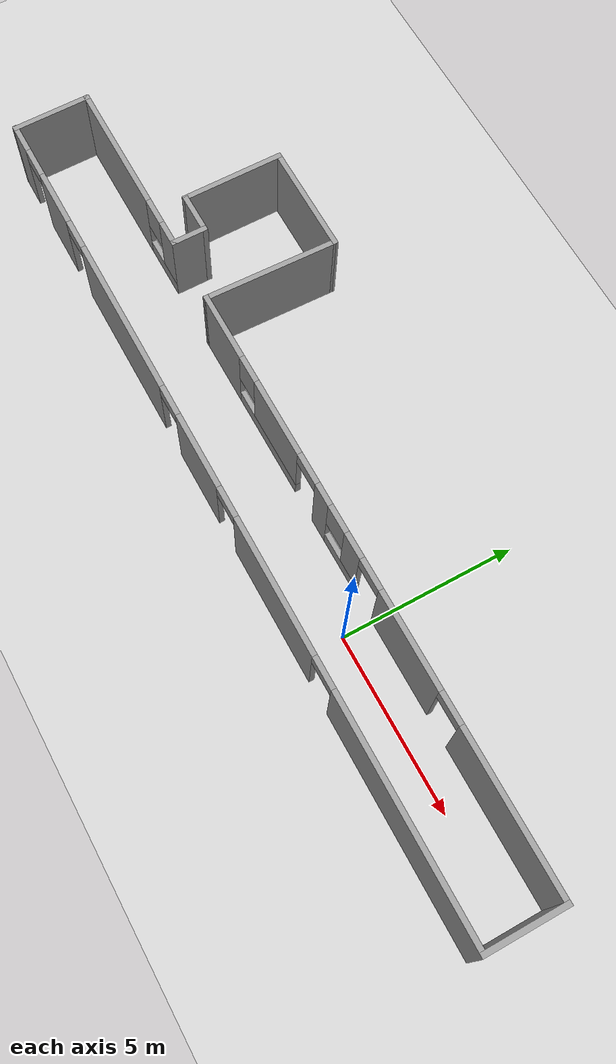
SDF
<sdf version="1.7">
 <world name="default">
  <light name="sun" type="directional">
   <pose>0 0 10 0 -0 0</pose>
   <diffuse>0.8 0.8 0.8 1</diffuse>
   <specular>0.2 0.2 0.2 1</specular>
   <attenuation>
    <range>1000</range>
    <constant>0.9</constant>
    <linear>0.01</linear>
    <quadratic>0.001</quadratic>
   </attenuation>
   <direction>-0.5 0.1 -0.9</direction>
   <spot><inner_angle>0</inner_angle><outer_angle>0</outer_angle><falloff>0</falloff></spot>
  </light>
  <model name="ground_plane">
   <static>1</static>
   <link name="link">
    <collision name="collision">
     <geometry><plane><normal>0 0 1</normal><size>100 100</size></plane></geometry>
     <surface>
      <contact><collide_bitmask>65535</collide_bitmask></contact>
      <friction><ode><mu>100</mu><mu2>50</mu2></ode></friction>
     </surface>
    </collision>
    <visual name="visual">
     <cast_shadows>0</cast_shadows>
     <geometry><plane><normal>0 0 1</normal><size>100 100</size></plane></geometry>
     <material>
      <script><uri>file://media/materials/scripts/gazebo.material</uri><name>Gazebo/Grey</name></script>
     </material>
    </visual>
   </link>
  </model>
  <gravity>0 0 -9.8</gravity>
  <magnetic_field>6e-06 2.3e-05 -4.2e-05</magnetic_field>
  <atmosphere type="adiabatic"/>
  <physics type="ode">
   <max_step_size>0.001</max_step_size>
   <real_time_factor>1</real_time_factor>
   <real_time_update_rate>1000</real_time_update_rate>
  </physics>
  <scene><ambient>0.4 0.4 0.4 1</ambient><background>0.7 0.7 0.7 1</background><shadows>1</shadows></scene>
  <audio><device>default</device></audio>
  <spherical_coordinates>
   <surface_model>EARTH_WGS84</surface_model>
   <latitude_deg>0</latitude_deg>
   <longitude_deg>0</longitude_deg>
   <elevation>0</elevation>
   <heading_deg>0</heading_deg>
  </spherical_coordinates>
  <model name="fx_floor10">
   <pose>-4.14967 1.73695 0 0 -0 0</pose>
   <link name="Wall_0">
    <pose>3.62523 -0.800869 0 0 -0 0</pose>
    <visual name="Wall_0_Visual_0">
     <pose>-7.61298 0 1.25 0 -0 0</pose>
     <geometry><box><size>2.02405 0.15 2.5</size></box></geometry>
     <material>
      <script><uri>file://media/materials/scripts/gazebo.material</uri><name>Gazebo/Grey</name></script>
      <ambient>1 1 1 1</ambient>
     </material>
     <meta><layer>0</layer></meta>
    </visual>
    <collision name="Wall_0_Collision_0">
     <geometry><box><size>2.02405 0.15 2.5</size></box></geometry>
     <pose>-7.61298 0 1.25 0 -0 0</pose>
    </collision>
    <visual name="Wall_0_Visual_1">
     <pose>-2.31095 0 1.25 0 -0 0</pose>
     <geometry><box><size>0.6545 0.15 2.5</size></box></geometry>
     <material>
      <script><uri>file://media/materials/scripts/gazebo.material</uri><name>Gazebo/Grey</name></script>
      <ambient>1 1 1 1</ambient>
     </material>
     <meta><layer>0</layer></meta>
    </visual>
    <collision name="Wall_0_Collision_1">
     <geometry><box><size>0.6545 0.15 2.5</size></box></geometry>
     <pose>-2.31095 0 1.25 0 -0 0</pose>
    </collision>
    <visual name="Wall_0_Visual_2">
     <pose>1.84034 0 1.25 0 -0 0</pose>
     <geometry><box><size>2.76614 0.15 2.5</size></box></geometry>
     <material>
      <script><uri>file://media/materials/scripts/gazebo.material</uri><name>Gazebo/Grey</name></script>
      <ambient>1 1 1 1</ambient>
     </material>
     <meta><layer>0</layer></meta>
    </visual>
    <collision name="Wall_0_Collision_2">
     <geometry><box><size>2.76614 0.15 2.5</size></box></geometry>
     <pose>1.84034 0 1.25 0 -0 0</pose>
    </collision>
    <visual name="Wall_0_Visual_3">
     <pose>6.3742 0 1.25 0 -0 0</pose>
     <geometry><box><size>4.50159 0.15 2.5</size></box></geometry>
     <material>
      <script><uri>file://media/materials/scripts/gazebo.material</uri><name>Gazebo/Grey</name></script>
      <ambient>1 1 1 1</ambient>
     </material>
     <meta><layer>0</layer></meta>
    </visual>
    <collision name="Wall_0_Collision_3">
     <geometry><box><size>4.50159 0.15 2.5</size></box></geometry>
     <pose>6.3742 0 1.25 0 -0 0</pose>
    </collision>
    <visual name="Wall_0_Visual_4">
     <pose>-5.06958 0 0.25 0 -0 0</pose>
     <geometry><box><size>3.06276 0.15 0.5</size></box></geometry>
     <material>
      <script><uri>file://media/materials/scripts/gazebo.material</uri><name>Gazebo/Grey</name></script>
      <ambient>1 1 1 1</ambient>
     </material>
     <meta><layer>0</layer></meta>
    </visual>
    <collision name="Wall_0_Collision_4">
     <geometry><box><size>3.06276 0.15 0.5</size></box></geometry>
     <pose>-5.06958 0 0.25 0 -0 0</pose>
    </collision>
    <visual name="Wall_0_Visual_5">
     <pose>-1.21321 0 0.25 0 -0 0</pose>
     <geometry><box><size>1.54097 0.15 0.5</size></box></geometry>
     <material>
      <script><uri>file://media/materials/scripts/gazebo.material</uri><name>Gazebo/Grey</name></script>
      <ambient>1 1 1 1</ambient>
     </material>
     <meta><layer>0</layer></meta>
    </visual>
    <collision name="Wall_0_Collision_5">
     <geometry><box><size>1.54097 0.15 0.5</size></box></geometry>
     <pose>-1.21321 0 0.25 0 -0 0</pose>
    </collision>
    <visual name="Wall_0_Visual_6">
     <pose>-4.66958 0 1.5 0 -0 0</pose>
     <geometry><box><size>2.26276 0.15 2</size></box></geometry>
     <material>
      <script><uri>file://media/materials/scripts/gazebo.material</uri><name>Gazebo/Grey</name></script>
      <ambient>1 1 1 1</ambient>
     </material>
     <meta><layer>0</layer></meta>
    </visual>
    <collision name="Wall_0_Collision_6">
     <geometry><box><size>2.26276 0.15 2</size></box></geometry>
     <pose>-4.66958 0 1.5 0 -0 0</pose>
    </collision>
    <visual name="Wall_0_Visual_7">
     <pose>-4.66958 0 1.5 0 -0 0</pose>
     <geometry><box><size>2.26276 0.15 2</size></box></geometry>
     <material>
      <script><uri>file://media/materials/scripts/gazebo.material</uri><name>Gazebo/Grey</name></script>
      <ambient>1 1 1 1</ambient>
     </material>
     <meta><layer>0</layer></meta>
    </visual>
    <collision name="Wall_0_Collision_7">
     <geometry><box><size>2.26276 0.15 2</size></box></geometry>
     <pose>-4.66958 0 1.5 0 -0 0</pose>
    </collision>
    <visual name="Wall_0_Visual_8">
     <pose>-0.813213 0 1.5 0 -0 0</pose>
     <geometry><box><size>0.740966 0.15 2</size></box></geometry>
     <material>
      <script><uri>file://media/materials/scripts/gazebo.material</uri><name>Gazebo/Grey</name></script>
      <ambient>1 1 1 1</ambient>
     </material>
     <meta><layer>0</layer></meta>
    </visual>
    <collision name="Wall_0_Collision_8">
     <geometry><box><size>0.740966 0.15 2</size></box></geometry>
     <pose>-0.813213 0 1.5 0 -0 0</pose>
    </collision>
    <visual name="Wall_0_Visual_9">
     <pose>-6.20096 0 1.9 0 -0 0</pose>
     <geometry><box><size>0.8 0.15 1.2</size></box></geometry>
     <material>
      <script><uri>file://media/materials/scripts/gazebo.material</uri><name>Gazebo/Grey</name></script>
      <ambient>1 1 1 1</ambient>
     </material>
     <meta><layer>0</layer></meta>
    </visual>
    <collision name="Wall_0_Collision_9">
     <geometry><box><size>0.8 0.15 1.2</size></box></geometry>
     <pose>-6.20096 0 1.9 0 -0 0</pose>
    </collision>
    <visual name="Wall_0_Visual_10">
     <pose>-1.5837 0 1.9 0 -0 0</pose>
     <geometry><box><size>0.8 0.15 1.2</size></box></geometry>
     <material>
      <script><uri>file://media/materials/scripts/gazebo.material</uri><name>Gazebo/Grey</name></script>
      <ambient>1 1 1 1</ambient>
     </material>
     <meta><layer>0</layer></meta>
    </visual>
    <collision name="Wall_0_Collision_10">
     <geometry><box><size>0.8 0.15 1.2</size></box></geometry>
     <pose>-1.5837 0 1.9 0 -0 0</pose>
    </collision>
    <visual name="Wall_0_Visual_11">
     <pose>3.67341 0 2.25 0 -0 0</pose>
     <geometry><box><size>0.9 0.15 0.5</size></box></geometry>
     <material>
      <script><uri>file://media/materials/scripts/gazebo.material</uri><name>Gazebo/Grey</name></script>
      <ambient>1 1 1 1</ambient>
     </material>
     <meta><layer>0</layer></meta>
    </visual>
    <collision name="Wall_0_Collision_11">
     <geometry><box><size>0.9 0.15 0.5</size></box></geometry>
     <pose>3.67341 0 2.25 0 -0 0</pose>
    </collision>
    <visual name="Wall_0_Visual_12">
     <pose>-3.0882 0 2.25 0 -0 0</pose>
     <geometry><box><size>0.9 0.15 0.5</size></box></geometry>
     <material>
      <script><uri>file://media/materials/scripts/gazebo.material</uri><name>Gazebo/Grey</name></script>
      <ambient>1 1 1 1</ambient>
     </material>
     <meta><layer>0</layer></meta>
    </visual>
    <collision name="Wall_0_Collision_12">
     <geometry><box><size>0.9 0.15 0.5</size></box></geometry>
     <pose>-3.0882 0 2.25 0 -0 0</pose>
    </collision>
    <visual name="Wall_0_Visual_13">
     <pose>-3.0882 0 2.25 0 -0 0</pose>
     <geometry><box><size>0.9 0.15 0.5</size></box></geometry>
     <material>
      <script><uri>file://media/materials/scripts/gazebo.material</uri><name>Gazebo/Grey</name></script>
      <ambient>1 1 1 1</ambient>
     </material>
     <meta><layer>0</layer></meta>
    </visual>
    <collision name="Wall_0_Collision_13">
     <geometry><box><size>0.9 0.15 0.5</size></box></geometry>
     <pose>-3.0882 0 2.25 0 -0 0</pose>
    </collision>
    <visual name="Wall_0_Visual_14">
     <pose>0.00727 0 2.25 0 -0 0</pose>
     <geometry><box><size>0.9 0.15 0.5</size></box></geometry>
     <material>
      <script><uri>file://media/materials/scripts/gazebo.material</uri><name>Gazebo/Grey</name></script>
      <ambient>1 1 1 1</ambient>
     </material>
     <meta><layer>0</layer></meta>
    </visual>
    <collision name="Wall_0_Collision_14">
     <geometry><box><size>0.9 0.15 0.5</size></box></geometry>
     <pose>0.00727 0 2.25 0 -0 0</pose>
    </collision>
   </link>
   <link name="Wall_1">
    <collision name="Wall_1_Collision">
     <geometry><box><size>2.31546 0.15 2.5</size></box></geometry>
     <pose>0 0 1.25 0 -0 0</pose>
    </collision>
    <visual name="Wall_1_Visual">
     <pose>0 0 1.25 0 -0 0</pose>
     <geometry><box><size>2.31546 0.15 2.5</size></box></geometry>
     <material>
      <script><uri>file://media/materials/scripts/gazebo.material</uri><name>Gazebo/Grey</name></script>
      <ambient>1 1 1 1</ambient>
     </material>
     <meta><layer>0</layer></meta>
    </visual>
    <pose>12.1752 -1.8836 0 0 -0 -1.5708</pose>
   </link>
   <link name="Wall_10">
    <collision name="Wall_10_Collision">
     <geometry><box><size>3 0.15 2.5</size></box></geometry>
     <pose>0 0 1.25 0 -0 0</pose>
    </collision>
    <visual name="Wall_10_Visual">
     <pose>0 0 1.25 0 -0 0</pose>
     <geometry><box><size>3 0.15 2.5</size></box></geometry>
     <material>
      <script><uri>file://media/materials/scripts/gazebo.material</uri><name>Gazebo/Grey</name></script>
      <ambient>1 1 1 1</ambient>
     </material>
     <meta><layer>0</layer></meta>
    </visual>
    <pose>-7.92477 1.53988 0 0 -0 1.5708</pose>
   </link>
   <link name="Wall_11">
    <collision name="Wall_11_Collision">
     <geometry><box><size>3.25 0.15 2.5</size></box></geometry>
     <pose>0 0 1.25 0 -0 0</pose>
    </collision>
    <visual name="Wall_11_Visual">
     <pose>0 0 1.25 0 -0 0</pose>
     <geometry><box><size>3.25 0.15 2.5</size></box></geometry>
     <material>
      <script><uri>file://media/materials/scripts/gazebo.material</uri><name>Gazebo/Grey</name></script>
      <ambient>1 1 1 1</ambient>
     </material>
     <meta><layer>0</layer></meta>
    </visual>
    <pose>-6.37477 2.96488 0 0 -0 0</pose>
   </link>
   <link name="Wall_12">
    <collision name="Wall_12_Collision">
     <geometry><box><size>3.91708 0.15 2.5</size></box></geometry>
     <pose>0 0 1.25 0 -0 0</pose>
    </collision>
    <visual name="Wall_12_Visual">
     <pose>0 0 1.25 0 -0 0</pose>
     <geometry><box><size>3.91708 0.15 2.5</size></box></geometry>
     <material>
      <script><uri>file://media/materials/scripts/gazebo.material</uri><name>Gazebo/Grey</name></script>
      <ambient>1 1 1 1</ambient>
     </material>
     <meta><layer>0</layer></meta>
    </visual>
    <pose>-4.87477 1.08201 0 0 -0 -1.59735</pose>
   </link>
   <link name="Wall_2">
    <pose>0.000227 -2.96633 0 0 -0 3.14159</pose>
    <visual name="Wall_2_Visual_0">
     <pose>-8.94432 0 1.25 0 -0 0</pose>
     <geometry><box><size>6.61135 0.15 2.5</size></box></geometry>
     <material>
      <script><uri>file://media/materials/scripts/gazebo.material</uri><name>Gazebo/Grey</name></script>
      <ambient>1 1 1 1</ambient>
     </material>
     <meta><layer>0</layer></meta>
    </visual>
    <collision name="Wall_2_Collision_0">
     <geometry><box><size>6.61135 0.15 2.5</size></box></geometry>
     <pose>-8.94432 0 1.25 0 -0 0</pose>
    </collision>
    <visual name="Wall_2_Visual_1">
     <pose>-2.77626 0 1.25 0 -0 0</pose>
     <geometry><box><size>3.92478 0.15 2.5</size></box></geometry>
     <material>
      <script><uri>file://media/materials/scripts/gazebo.material</uri><name>Gazebo/Grey</name></script>
      <ambient>1 1 1 1</ambient>
     </material>
     <meta><layer>0</layer></meta>
    </visual>
    <collision name="Wall_2_Collision_1">
     <geometry><box><size>3.92478 0.15 2.5</size></box></geometry>
     <pose>-2.77626 0 1.25 0 -0 0</pose>
    </collision>
    <visual name="Wall_2_Visual_2">
     <pose>1.19251 0 1.25 0 -0 0</pose>
     <geometry><box><size>2.21276 0.15 2.5</size></box></geometry>
     <material>
      <script><uri>file://media/materials/scripts/gazebo.material</uri><name>Gazebo/Grey</name></script>
      <ambient>1 1 1 1</ambient>
     </material>
     <meta><layer>0</layer></meta>
    </visual>
    <collision name="Wall_2_Collision_2">
     <geometry><box><size>2.21276 0.15 2.5</size></box></geometry>
     <pose>1.19251 0 1.25 0 -0 0</pose>
    </collision>
    <visual name="Wall_2_Visual_3">
     <pose>5.52443 0 1.25 0 -0 0</pose>
     <geometry><box><size>4.65109 0.15 2.5</size></box></geometry>
     <material>
      <script><uri>file://media/materials/scripts/gazebo.material</uri><name>Gazebo/Grey</name></script>
      <ambient>1 1 1 1</ambient>
     </material>
     <meta><layer>0</layer></meta>
    </visual>
    <collision name="Wall_2_Collision_3">
     <geometry><box><size>4.65109 0.15 2.5</size></box></geometry>
     <pose>5.52443 0 1.25 0 -0 0</pose>
    </collision>
    <visual name="Wall_2_Visual_4">
     <pose>9.59695 0 1.25 0 -0 0</pose>
     <geometry><box><size>1.69397 0.15 2.5</size></box></geometry>
     <material>
      <script><uri>file://media/materials/scripts/gazebo.material</uri><name>Gazebo/Grey</name></script>
      <ambient>1 1 1 1</ambient>
     </material>
     <meta><layer>0</layer></meta>
    </visual>
    <collision name="Wall_2_Collision_4">
     <geometry><box><size>1.69397 0.15 2.5</size></box></geometry>
     <pose>9.59695 0 1.25 0 -0 0</pose>
    </collision>
    <visual name="Wall_2_Visual_5">
     <pose>11.797 0 1.25 0 -0 0</pose>
     <geometry><box><size>0.906063 0.15 2.5</size></box></geometry>
     <material>
      <script><uri>file://media/materials/scripts/gazebo.material</uri><name>Gazebo/Grey</name></script>
      <ambient>1 1 1 1</ambient>
     </material>
     <meta><layer>0</layer></meta>
    </visual>
    <collision name="Wall_2_Collision_5">
     <geometry><box><size>0.906063 0.15 2.5</size></box></geometry>
     <pose>11.797 0 1.25 0 -0 0</pose>
    </collision>
    <visual name="Wall_2_Visual_6">
     <pose>-5.18865 0 2.25 0 -0 0</pose>
     <geometry><box><size>0.9 0.15 0.5</size></box></geometry>
     <material>
      <script><uri>file://media/materials/scripts/gazebo.material</uri><name>Gazebo/Grey</name></script>
      <ambient>1 1 1 1</ambient>
     </material>
     <meta><layer>0</layer></meta>
    </visual>
    <collision name="Wall_2_Collision_6">
     <geometry><box><size>0.9 0.15 0.5</size></box></geometry>
     <pose>-5.18865 0 2.25 0 -0 0</pose>
    </collision>
    <visual name="Wall_2_Visual_7">
     <pose>-0.363873 0 2.25 0 -0 0</pose>
     <geometry><box><size>0.9 0.15 0.5</size></box></geometry>
     <material>
      <script><uri>file://media/materials/scripts/gazebo.material</uri><name>Gazebo/Grey</name></script>
      <ambient>1 1 1 1</ambient>
     </material>
     <meta><layer>0</layer></meta>
    </visual>
    <collision name="Wall_2_Collision_7">
     <geometry><box><size>0.9 0.15 0.5</size></box></geometry>
     <pose>-0.363873 0 2.25 0 -0 0</pose>
    </collision>
    <visual name="Wall_2_Visual_8">
     <pose>2.74889 0 2.25 0 -0 0</pose>
     <geometry><box><size>0.9 0.15 0.5</size></box></geometry>
     <material>
      <script><uri>file://media/materials/scripts/gazebo.material</uri><name>Gazebo/Grey</name></script>
      <ambient>1 1 1 1</ambient>
     </material>
     <meta><layer>0</layer></meta>
    </visual>
    <collision name="Wall_2_Collision_8">
     <geometry><box><size>0.9 0.15 0.5</size></box></geometry>
     <pose>2.74889 0 2.25 0 -0 0</pose>
    </collision>
    <visual name="Wall_2_Visual_9">
     <pose>8.29997 0 2.25 0 -0 0</pose>
     <geometry><box><size>0.9 0.15 0.5</size></box></geometry>
     <material>
      <script><uri>file://media/materials/scripts/gazebo.material</uri><name>Gazebo/Grey</name></script>
      <ambient>1 1 1 1</ambient>
     </material>
     <meta><layer>0</layer></meta>
    </visual>
    <collision name="Wall_2_Collision_9">
     <geometry><box><size>0.9 0.15 0.5</size></box></geometry>
     <pose>8.29997 0 2.25 0 -0 0</pose>
    </collision>
    <visual name="Wall_2_Visual_10">
     <pose>10.8939 0 2.25 0 -0 0</pose>
     <geometry><box><size>0.9 0.15 0.5</size></box></geometry>
     <material>
      <script><uri>file://media/materials/scripts/gazebo.material</uri><name>Gazebo/Grey</name></script>
      <ambient>1 1 1 1</ambient>
     </material>
     <meta><layer>0</layer></meta>
    </visual>
    <collision name="Wall_2_Collision_10">
     <geometry><box><size>0.9 0.15 0.5</size></box></geometry>
     <pose>10.8939 0 2.25 0 -0 0</pose>
    </collision>
   </link>
   <link name="Wall_3">
    <collision name="Wall_3_Collision">
     <geometry><box><size>2.31562 0.15 2.5</size></box></geometry>
     <pose>0 0 1.25 0 -0 0</pose>
    </collision>
    <visual name="Wall_3_Visual">
     <pose>0 0 1.25 0 -0 0</pose>
     <geometry><box><size>2.31562 0.15 2.5</size></box></geometry>
     <material>
      <script><uri>file://media/materials/scripts/gazebo.material</uri><name>Gazebo/Grey</name></script>
      <ambient>1 1 1 1</ambient>
     </material>
     <meta><layer>0</layer></meta>
    </visual>
    <pose>-12.1682 -1.8836 0 0 -0 1.57687</pose>
   </link>
   <link name="Wall_4">
    <pose>-9.49977 -0.800869 0 0 -0 0</pose>
    <visual name="Wall_4_Visual_0">
     <pose>-0.793408 0 1.25 0 -0 0</pose>
     <geometry><box><size>3.91318 0.15 2.5</size></box></geometry>
     <material>
      <script><uri>file://media/materials/scripts/gazebo.material</uri><name>Gazebo/Grey</name></script>
      <ambient>1 1 1 1</ambient>
     </material>
     <meta><layer>0</layer></meta>
    </visual>
    <collision name="Wall_4_Collision_0">
     <geometry><box><size>3.91318 0.15 2.5</size></box></geometry>
     <pose>-0.793408 0 1.25 0 -0 0</pose>
    </collision>
    <visual name="Wall_4_Visual_1">
     <pose>1.95659 0 0.25 0 -0 0</pose>
     <geometry><box><size>1.58682 0.15 0.5</size></box></geometry>
     <material>
      <script><uri>file://media/materials/scripts/gazebo.material</uri><name>Gazebo/Grey</name></script>
      <ambient>1 1 1 1</ambient>
     </material>
     <meta><layer>0</layer></meta>
    </visual>
    <collision name="Wall_4_Collision_1">
     <geometry><box><size>1.58682 0.15 0.5</size></box></geometry>
     <pose>1.95659 0 0.25 0 -0 0</pose>
    </collision>
    <visual name="Wall_4_Visual_2">
     <pose>2.35659 0 1.5 0 -0 0</pose>
     <geometry><box><size>0.786817 0.15 2</size></box></geometry>
     <material>
      <script><uri>file://media/materials/scripts/gazebo.material</uri><name>Gazebo/Grey</name></script>
      <ambient>1 1 1 1</ambient>
     </material>
     <meta><layer>0</layer></meta>
    </visual>
    <collision name="Wall_4_Collision_2">
     <geometry><box><size>0.786817 0.15 2</size></box></geometry>
     <pose>2.35659 0 1.5 0 -0 0</pose>
    </collision>
    <visual name="Wall_4_Visual_3">
     <pose>1.56318 0 1.9 0 -0 0</pose>
     <geometry><box><size>0.8 0.15 1.2</size></box></geometry>
     <material>
      <script><uri>file://media/materials/scripts/gazebo.material</uri><name>Gazebo/Grey</name></script>
      <ambient>1 1 1 1</ambient>
     </material>
     <meta><layer>0</layer></meta>
    </visual>
    <collision name="Wall_4_Collision_3">
     <geometry><box><size>0.8 0.15 1.2</size></box></geometry>
     <pose>1.56318 0 1.9 0 -0 0</pose>
    </collision>
   </link>
   <link name="Wall_5">
    <collision name="Wall_5_Collision">
     <geometry><box><size>1.06575 0.15 2.5</size></box></geometry>
     <pose>0 0 1.25 0 -0 0</pose>
    </collision>
    <visual name="Wall_5_Visual">
     <pose>0 0 1.25 0 -0 0</pose>
     <geometry><box><size>1.06575 0.15 2.5</size></box></geometry>
     <material>
      <script><uri>file://media/materials/scripts/gazebo.material</uri><name>Gazebo/Grey</name></script>
      <ambient>1 1 1 1</ambient>
     </material>
     <meta><layer>0</layer></meta>
    </visual>
    <pose>-6.82477 -0.342993 0 0 -0 1.5708</pose>
   </link>
   <link name="Wall_9">
    <collision name="Wall_9_Collision">
     <geometry><box><size>1.25 0.15 2.5</size></box></geometry>
     <pose>0 0 1.25 0 -0 0</pose>
    </collision>
    <visual name="Wall_9_Visual">
     <pose>0 0 1.25 0 -0 0</pose>
     <geometry><box><size>1.25 0.15 2.5</size></box></geometry>
     <material>
      <script><uri>file://media/materials/scripts/gazebo.material</uri><name>Gazebo/Grey</name></script>
      <ambient>1 1 1 1</ambient>
     </material>
     <meta><layer>0</layer></meta>
    </visual>
    <pose>-7.37477 0.114883 0 0 -0 3.14159</pose>
   </link>
   <static>1</static>
  </model>
 </world>
</sdf>
